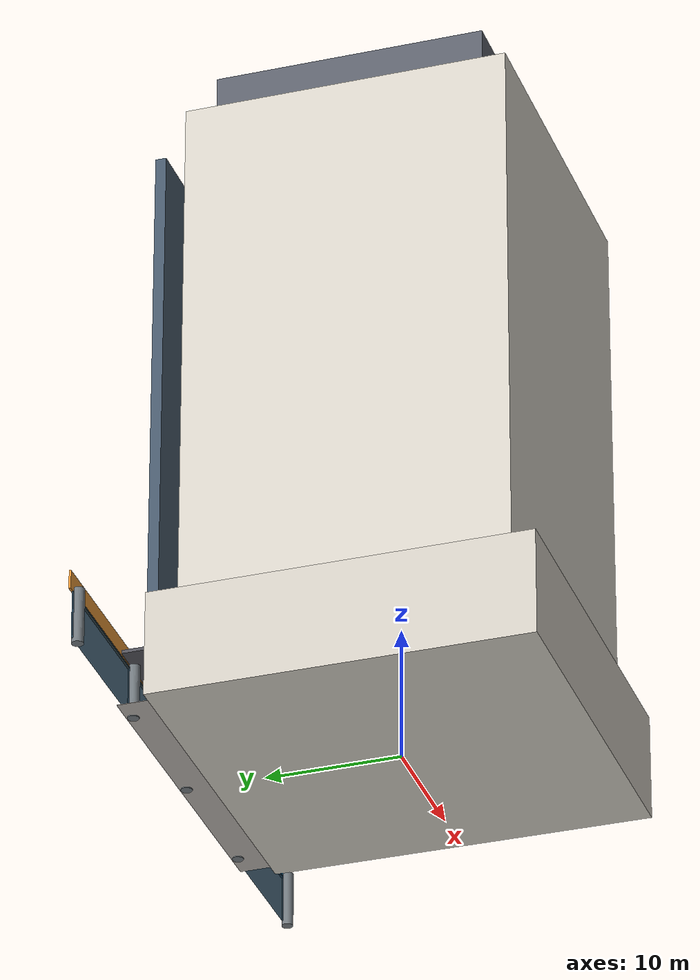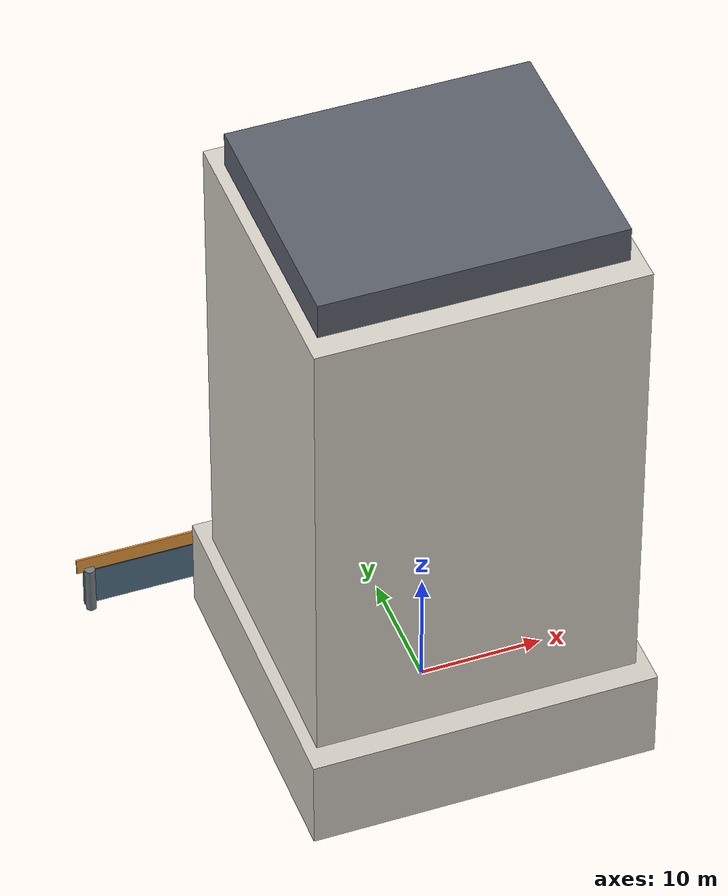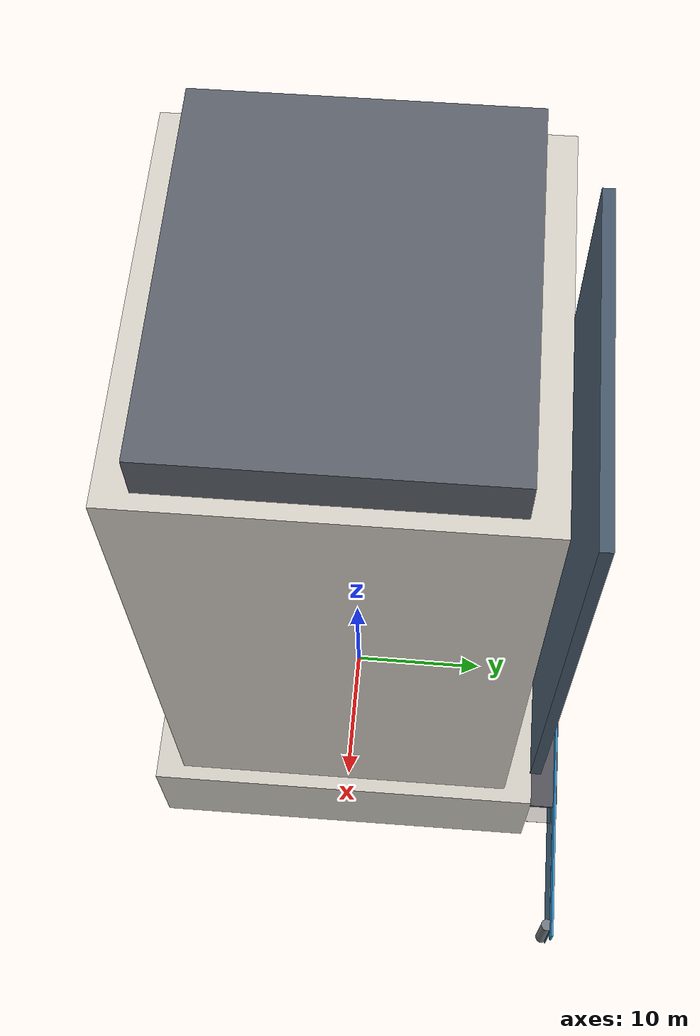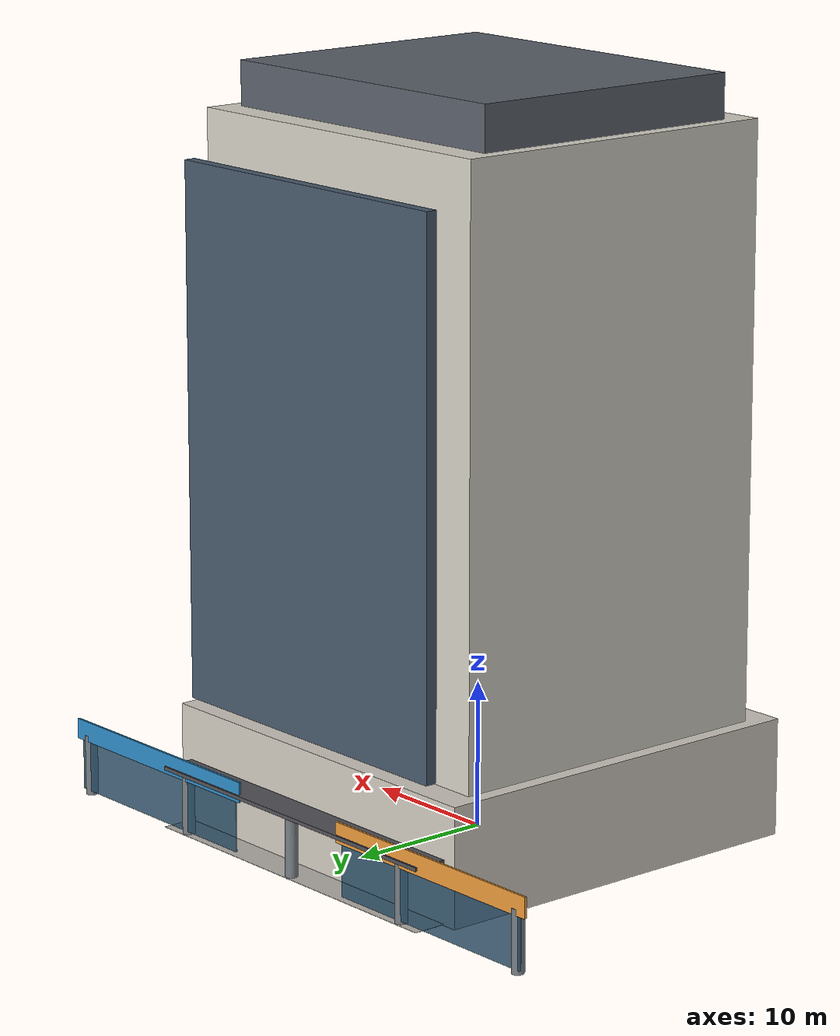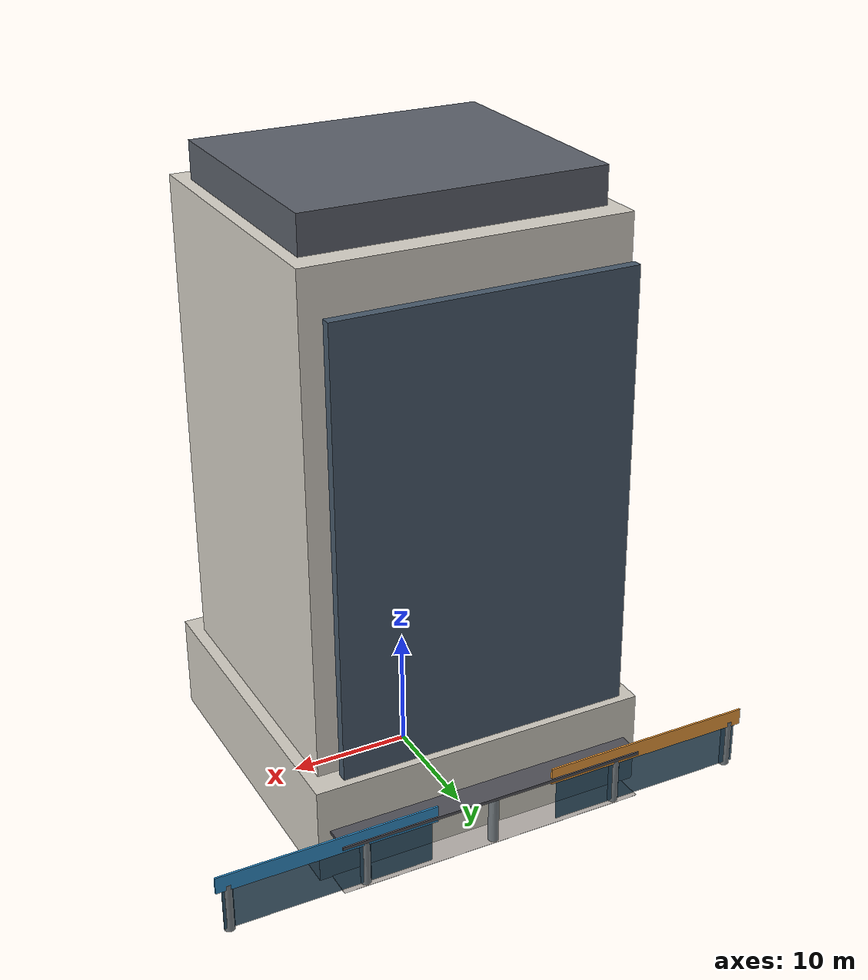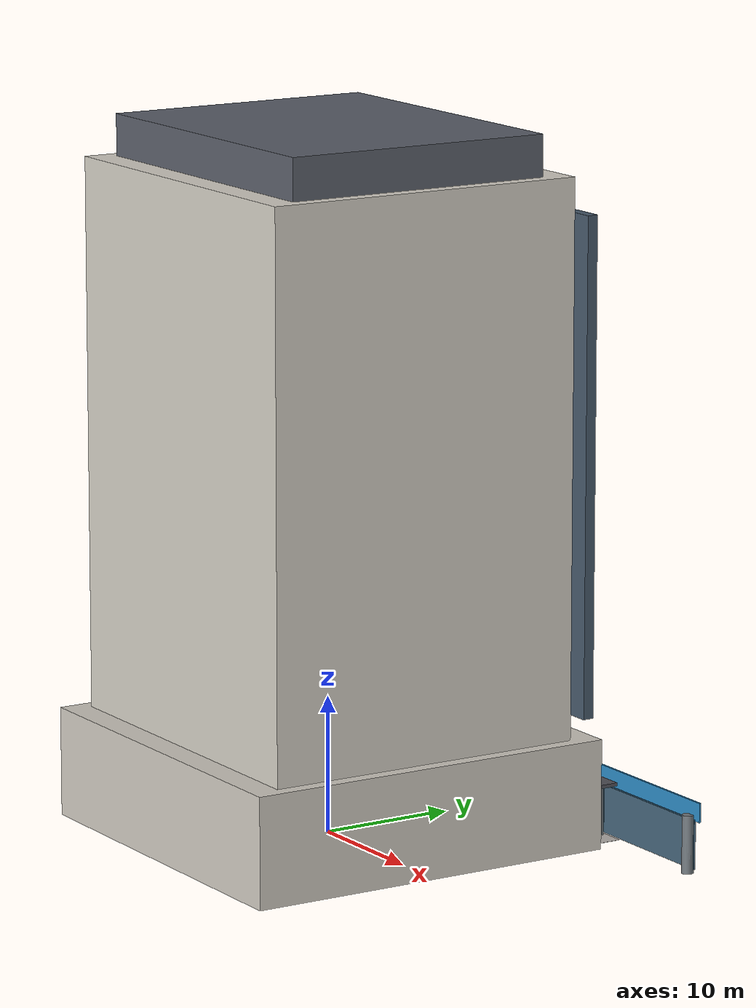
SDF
<?xml version="1.0" ?>
<sdf version="1.8">
  <model name="changyi_blue_ocean_residence">
    <static>true</static>
    <link name="blue_ocean_link">
      <collision name="podium_col"><pose>0 0 4.0 0 0 0</pose><geometry><box><size>28.0 28.0 8.0</size></box></geometry></collision>
      <collision name="tower_col"><pose>0 0 27.0 0 0 0</pose><geometry><box><size>26.0 24.0 42.0</size></box></geometry></collision>
      <visual name="podium_vis"><pose>0 0 4.0 0 0 0</pose><geometry><box><size>28.0 28.0 8.0</size></box></geometry><material><ambient>0.75 0.73 0.70 1</ambient><diffuse>0.82 0.80 0.76 1</diffuse></material></visual>
      <visual name="arcade_floor"><pose>0 14.5 0.08 0 0 0</pose><geometry><box><size>26.0 3.6 0.02</size></box></geometry><material><ambient>0.65 0.62 0.60 1</ambient><diffuse>0.72 0.70 0.68 1</diffuse></material></visual>
      <visual name="arcade_ceiling"><pose>0 14.5 4.2 0 0 0</pose><geometry><box><size>26.0 3.6 0.25</size></box></geometry><material><ambient>0.28 0.28 0.30 1</ambient><diffuse>0.32 0.32 0.35 1</diffuse></material></visual>
      <visual name="arcade_col_-22"><pose>-22.0 15.8 2.1 0 0 0</pose><geometry><cylinder><radius>0.42</radius><length>4.2</length></cylinder></geometry><material><ambient>0.38 0.4 0.42 1</ambient><diffuse>0.45 0.48 0.50 1</diffuse></material></visual>
      <visual name="arcade_col_-11"><pose>-11.0 15.8 2.1 0 0 0</pose><geometry><cylinder><radius>0.42</radius><length>4.2</length></cylinder></geometry><material><ambient>0.38 0.4 0.42 1</ambient><diffuse>0.45 0.48 0.50 1</diffuse></material></visual>
      <visual name="arcade_col_0"><pose>0.0 15.8 2.1 0 0 0</pose><geometry><cylinder><radius>0.42</radius><length>4.2</length></cylinder></geometry><material><ambient>0.38 0.4 0.42 1</ambient><diffuse>0.45 0.48 0.50 1</diffuse></material></visual>
      <visual name="arcade_col_11"><pose>11.0 15.8 2.1 0 0 0</pose><geometry><cylinder><radius>0.42</radius><length>4.2</length></cylinder></geometry><material><ambient>0.38 0.4 0.42 1</ambient><diffuse>0.45 0.48 0.50 1</diffuse></material></visual>
      <visual name="arcade_col_22"><pose>22.0 15.8 2.1 0 0 0</pose><geometry><cylinder><radius>0.42</radius><length>4.2</length></cylinder></geometry><material><ambient>0.38 0.4 0.42 1</ambient><diffuse>0.45 0.48 0.50 1</diffuse></material></visual>
      <visual name="bakery_fascia"><pose>-14.0 16.1 4.5 0 0 0</pose><geometry><box><size>18.0 0.15 1.4</size></box></geometry><material><ambient>0.82 0.52 0.18 1</ambient><diffuse>0.92 0.60 0.22 1</diffuse><emissive>0.3 0.18 0.05 1</emissive></material></visual>
      <visual name="bakery_glass"><pose>-14.0 16.05 2.1 0 0 0</pose><geometry><box><size>17.0 0.1 3.6</size></box></geometry><material><ambient>0.15 0.25 0.35 0.88</ambient><diffuse>0.20 0.35 0.45 0.88</diffuse><specular>0.9 0.95 1.0 1</specular></material></visual>
      <visual name="clinic_fascia"><pose>14.0 16.1 4.5 0 0 0</pose><geometry><box><size>18.0 0.15 1.4</size></box></geometry><material><ambient>0.12 0.42 0.62 1</ambient><diffuse>0.18 0.55 0.78 1</diffuse><emissive>0.08 0.25 0.38 1</emissive></material></visual>
      <visual name="clinic_glass"><pose>14.0 16.05 2.1 0 0 0</pose><geometry><box><size>17.0 0.1 3.6</size></box></geometry><material><ambient>0.15 0.25 0.35 0.88</ambient><diffuse>0.20 0.35 0.45 0.88</diffuse><specular>0.9 0.95 1.0 1</specular></material></visual>
      <visual name="tower_main_vis"><pose>0 0 27.0 0 0 0</pose><geometry><box><size>26.0 24.0 42.0</size></box></geometry><material><ambient>0.78 0.76 0.72 1</ambient><diffuse>0.84 0.82 0.78 1</diffuse></material></visual>
      <visual name="balconies_front"><pose>0 14.2 27.0 0 0 0</pose><geometry><box><size>24.0 0.8 36.0</size></box></geometry><material><ambient>0.22 0.28 0.34 0.9</ambient><diffuse>0.28 0.35 0.42 0.9</diffuse><specular>0.9 0.95 1.0 1</specular></material></visual>
      <visual name="tower_crown"><pose>0 0 49.5 0 0 0</pose><geometry><box><size>24.0 20.0 3.0</size></box></geometry><material><ambient>0.30 0.32 0.35 1</ambient><diffuse>0.36 0.38 0.42 1</diffuse></material></visual>
    </link>
  </model>
</sdf>
